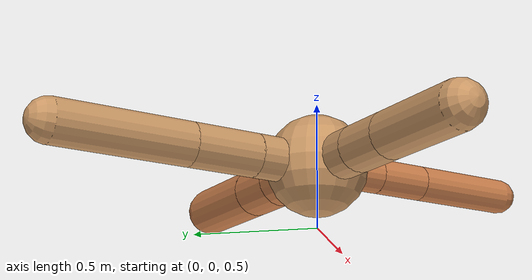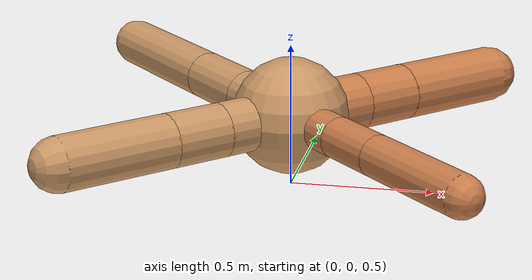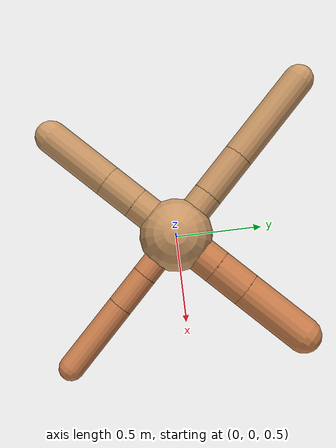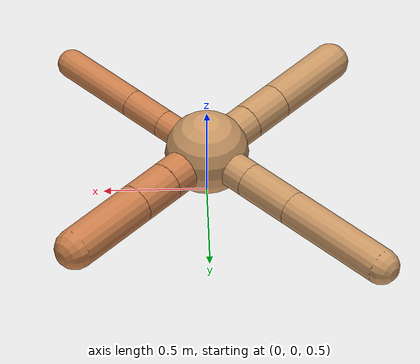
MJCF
<?xml version="1.0" ?>
<mujoco model="ant">

	<compiler angle="degree" coordinate="local" inertiafromgeom="true"/>

	<option integrator="RK4" timestep="0.01"/>

	<custom>

		<numeric data="0.0 0.0 0.55 1.0 0.0 0.0 0.0 0.0 1.0 0.0 -1.0 0.0 -1.0 0.0 1.0" name="init_qpos"/>

	</custom>

	<default>

		<joint armature="1" damping="1" limited="true"/>

		<geom conaffinity="0" condim="3" density="5.0" friction="1.5 0.1 0.1" margin="0.01" rgba="0.8 0.6 0.4 1"/>

	</default>

	<worldbody>

		<body name="torso" pos="0 0 0.75">

			<geom name="torso_geom" pos="0 0 0" size="0.20234298833561115" type="sphere"/>

			<!--joint armature="0" damping="0" limited="false" margin="0.01" name="root" pos="0 0 0" type="free"/-->

			<body name="front_left_leg" pos="0 0 0">

				<geom fromto="0 0 0 0.2 0.2 0" name="aux_1_geom" size="0.099707466256232" type="capsule" rgba=".8 .5 .3 1"/>

				<body name="aux_1" pos="0.2 0.2 0">

					<joint axis="0 0 1" name="hip_1" pos="0.0 0.0 0.0" range="-40 40" type="hinge"/>

					<geom fromto="0 0 0 0.14199138985204304 0.14199138985204304 0" name="left_leg_geom" size="0.099707466256232" type="capsule" rgba=".8 .5 .3 1"/>

					<body pos="0.14199138985204304 0.14199138985204304 0" name="front_left_foot">

						<joint axis="-1 1 0" name="ankle_1" pos="0.0 0.0 0.0" range="30 100" type="hinge"/>

						<geom fromto="0 0 0 0.2839827797040861 0.2839827797040861 0" name="left_ankle_geom" size="0.099707466256232" type="capsule" rgba=".8 .5 .3 1"/>

					</body>

				</body>

			</body>

			<body name="front_right_leg" pos="0 0 0">

				<geom fromto="0 0 0 -0.2 0.2 0" name="aux_2_geom" size="0.08652923578947007" type="capsule"/>

				<body name="aux_2" pos="-0.2 0.2 0">

					<joint axis="0 0 1" name="hip_2" pos="0.0 0.0 0.0" range="-40 40" type="hinge"/>

					<geom fromto="0 0 0 -0.1940568389504651 0.1940568389504651 0" name="right_leg_geom" size="0.08652923578947007" type="capsule"/>

					<body pos="-0.1940568389504651 0.1940568389504651 0" name="front_right_foot">

						<joint axis="1 1 0" name="ankle_2" pos="0.0 0.0 0.0" range="-100 -30" type="hinge"/>

						<geom fromto="0 0 0 -0.3881136779009302 0.3881136779009302 0" name="right_ankle_geom" size="0.08652923578947007" type="capsule"/>

					</body>

				</body>

			</body>

			<body name="left_back_leg" pos="0 0 0">

				<geom fromto="0 0 0 -0.2 -0.2 0" name="aux_3_geom" size="0.09288787010193242" type="capsule"/>

				<body name="aux_3" pos="-0.2 -0.2 0">

					<joint axis="0 0 1" name="hip_3" pos="0.0 0.0 0.0" range="-40 40" type="hinge"/>

					<geom fromto="0 0 0 -0.14114896154449916 -0.14114896154449916 0" name="back_leg_geom" size="0.09288787010193242" type="capsule"/>

					<body pos="-0.14114896154449916 -0.14114896154449916 0" name="left_back_foot">

						<joint axis="-1 1 0" name="ankle_3" pos="0.0 0.0 0.0" range="-100 -30" type="hinge"/>

						<geom fromto="0 0 0 -0.2822979230889983 -0.2822979230889983 0" name="third_ankle_geom" size="0.09288787010193242" type="capsule"/>

					</body>

				</body>

			</body>

			<body name="right_back_leg" pos="0 0 0">

				<geom fromto="0 0 0 0.2 -0.2 0" name="aux_4_geom" size="0.07119357833239114" type="capsule" rgba=".8 .5 .3 1"/>

				<body name="aux_4" pos="0.2 -0.2 0">

					<joint axis="0 0 1" name="hip_4" pos="0.0 0.0 0.0" range="-40 40" type="hinge"/>

					<geom fromto="0 0 0 0.14990060257587381 -0.14990060257587381 0" name="rightback_leg_geom" size="0.07119357833239114" type="capsule" rgba=".8 .5 .3 1"/>

					<body pos="0.14990060257587381 -0.14990060257587381 0" name="right_back_foot">

						<joint axis="1 1 0" name="ankle_4" pos="0.0 0.0 0.0" range="30 100" type="hinge"/>

						<geom fromto="0 0 0 0.29980120515174763 -0.29980120515174763 0" name="fourth_ankle_geom" size="0.07119357833239114" type="capsule" rgba=".8 .5 .3 1"/>

					</body>

				</body>

			</body>

		</body>

	</worldbody>

	<actuator>

		<motor ctrllimited="true" ctrlrange="-1.0 1.0" joint="hip_4" gear="150"/>

		<motor ctrllimited="true" ctrlrange="-1.0 1.0" joint="ankle_4" gear="150"/>

		<motor ctrllimited="true" ctrlrange="-1.0 1.0" joint="hip_1" gear="150"/>

		<motor ctrllimited="true" ctrlrange="-1.0 1.0" joint="ankle_1" gear="150"/>

		<motor ctrllimited="true" ctrlrange="-1.0 1.0" joint="hip_2" gear="150"/>

		<motor ctrllimited="true" ctrlrange="-1.0 1.0" joint="ankle_2" gear="150"/>

		<motor ctrllimited="true" ctrlrange="-1.0 1.0" joint="hip_3" gear="150"/>

		<motor ctrllimited="true" ctrlrange="-1.0 1.0" joint="ankle_3" gear="150"/>

	</actuator>

</mujoco>
